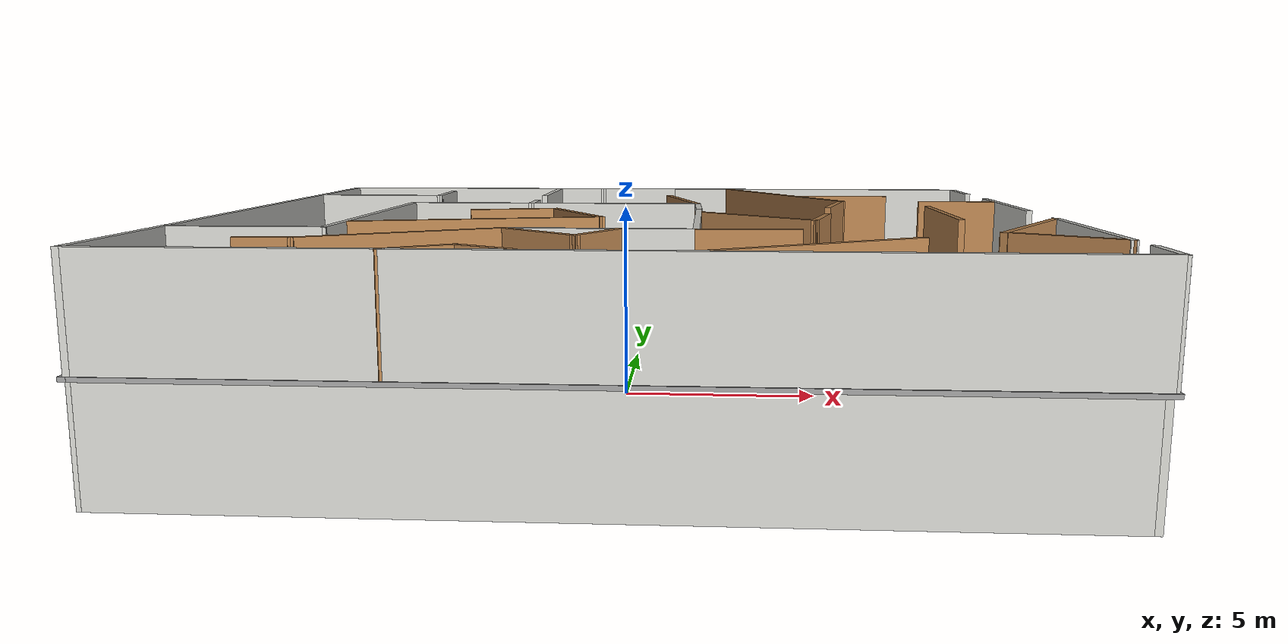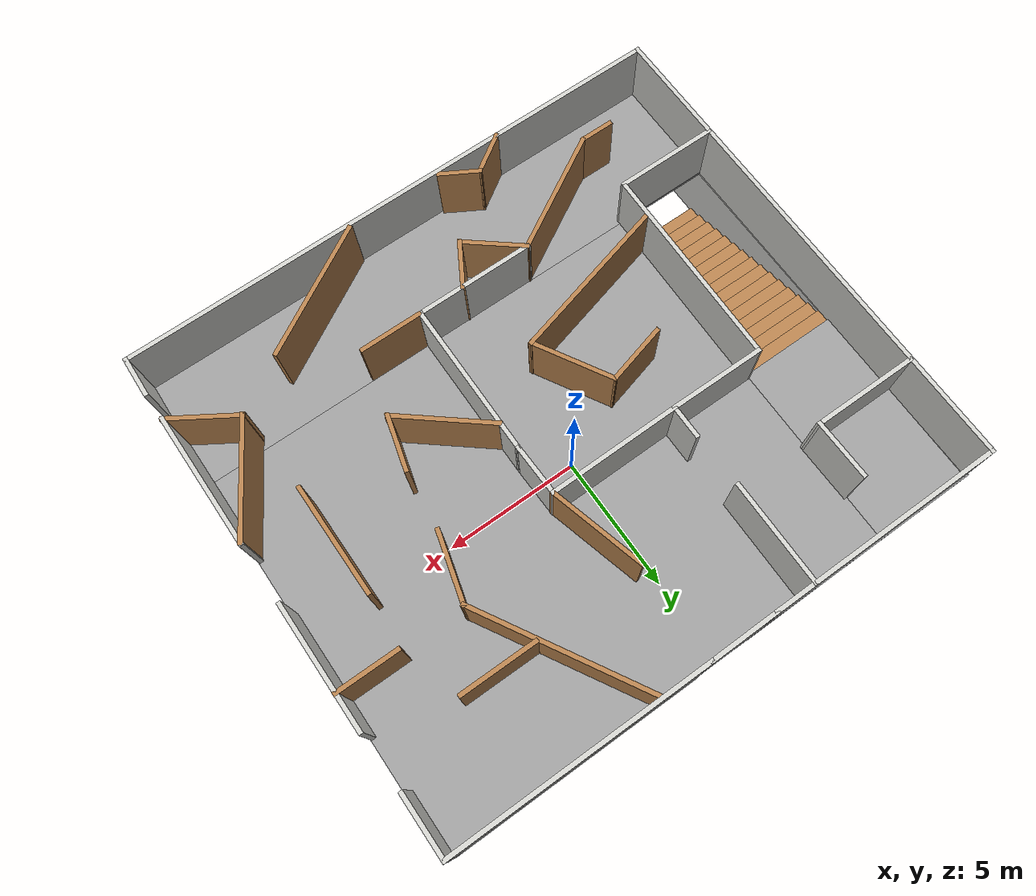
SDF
<?xml version='1.0'?>
<sdf version='1.6'>
  <model name='home'>
    <pose frame=''>0.222771 -0.763593 0 0 -0 0</pose>
    <link name='Floor_1'>
      <pose frame=''>0.051292 -0.010548 2.5 0 -0 0</pose>
      <visual name='Floor_1_Visual_0'>
        <pose frame=''>-9.96633 0 0.05 0 -0 0</pose>
        <geometry>
          <box>
            <size>0.163285 17.9576 0.1</size>
          </box>
        </geometry>
        <material>
          <script>
            <uri>file://media/materials/scripts/gazebo.material</uri>
            <name>Gazebo/Grey</name>
          </script>
          <ambient>1 1 1 1</ambient>
        </material>
        <meta>
          <layer>1</layer>
        </meta>
      </visual>
      <collision name='Floor_1_Collision_0'>
        <geometry>
          <box>
            <size>0.163285 17.9576 0.1</size>
          </box>
        </geometry>
        <pose frame=''>-9.96633 0 0.05 0 -0 0</pose>
      </collision>
      <visual name='Floor_1_Visual_1'>
        <pose frame=''>0.081642 -6.90167 0.05 0 -0 0</pose>
        <geometry>
          <box>
            <size>19.9327 4.15425 0.1</size>
          </box>
        </geometry>
        <material>
          <script>
            <uri>file://media/materials/scripts/gazebo.material</uri>
            <name>Gazebo/Grey</name>
          </script>
          <ambient>1 1 1 1</ambient>
        </material>
        <meta>
          <layer>1</layer>
        </meta>
      </visual>
      <collision name='Floor_1_Collision_1'>
        <geometry>
          <box>
            <size>19.9327 4.15425 0.1</size>
          </box>
        </geometry>
        <pose frame=''>0.081642 -6.90167 0.05 0 -0 0</pose>
      </collision>
      <visual name='Floor_1_Visual_2'>
        <pose frame=''>1.84664 2.07713 0.05 0 -0 0</pose>
        <geometry>
          <box>
            <size>16.4027 13.8033 0.1</size>
          </box>
        </geometry>
        <material>
          <script>
            <uri>file://media/materials/scripts/gazebo.material</uri>
            <name>Gazebo/Grey</name>
          </script>
          <ambient>1 1 1 1</ambient>
        </material>
        <meta>
          <layer>1</layer>
        </meta>
      </visual>
      <collision name='Floor_1_Collision_2'>
        <geometry>
          <box>
            <size>16.4027 13.8033 0.1</size>
          </box>
        </geometry>
        <pose frame=''>1.84664 2.07713 0.05 0 -0 0</pose>
      </collision>
      <visual name='Floor_1_Visual_3'>
        <pose frame=''>-8.11969 5.56778 0.05 0 -0 0</pose>
        <geometry>
          <box>
            <size>3.53 6.82204 0.1</size>
          </box>
        </geometry>
        <material>
          <script>
            <uri>file://media/materials/scripts/gazebo.material</uri>
            <name>Gazebo/Grey</name>
          </script>
          <ambient>1 1 1 1</ambient>
        </material>
        <meta>
          <layer>1</layer>
        </meta>
      </visual>
      <collision name='Floor_1_Collision_3'>
        <geometry>
          <box>
            <size>3.53 6.82204 0.1</size>
          </box>
        </geometry>
        <pose frame=''>-8.11969 5.56778 0.05 0 -0 0</pose>
      </collision>
    </link>
    <link name='Stairs_0'>
      <visual name='Stairs_0_Visual_0'>
        <pose frame=''>-8.0684 -4.60238 0.083333 0 -0 -3.14159</pose>
        <geometry>
          <box>
            <size>3.53 0.46542 0.166667</size>
          </box>
        </geometry>
        <material>
          <script>
            <uri>file://media/materials/scripts/gazebo.material</uri>
            <name>Gazebo/Wood</name>
          </script>
          <ambient>1 1 1 1</ambient>
        </material>
        <meta>
          <layer>0</layer>
        </meta>
      </visual>
      <collision name='Stairs_0_Collision_0'>
        <geometry>
          <box>
            <size>3.53 0.46542 0.166667</size>
          </box>
        </geometry>
        <pose frame=''>-8.0684 -4.60238 0.083333 0 -0 -3.14159</pose>
      </collision>
      <visual name='Stairs_0_Visual_1'>
        <pose frame=''>-8.0684 -4.13696 0.25 0 -0 -3.14159</pose>
        <geometry>
          <box>
            <size>3.53 0.46542 0.166667</size>
          </box>
        </geometry>
        <material>
          <script>
            <uri>file://media/materials/scripts/gazebo.material</uri>
            <name>Gazebo/Wood</name>
          </script>
          <ambient>1 1 1 1</ambient>
        </material>
        <meta>
          <layer>0</layer>
        </meta>
      </visual>
      <collision name='Stairs_0_Collision_1'>
        <geometry>
          <box>
            <size>3.53 0.46542 0.166667</size>
          </box>
        </geometry>
        <pose frame=''>-8.0684 -4.13696 0.25 0 -0 -3.14159</pose>
      </collision>
      <visual name='Stairs_0_Visual_2'>
        <pose frame=''>-8.0684 -3.67154 0.416667 0 -0 -3.14159</pose>
        <geometry>
          <box>
            <size>3.53 0.46542 0.166667</size>
          </box>
        </geometry>
        <material>
          <script>
            <uri>file://media/materials/scripts/gazebo.material</uri>
            <name>Gazebo/Wood</name>
          </script>
          <ambient>1 1 1 1</ambient>
        </material>
        <meta>
          <layer>0</layer>
        </meta>
      </visual>
      <collision name='Stairs_0_Collision_2'>
        <geometry>
          <box>
            <size>3.53 0.46542 0.166667</size>
          </box>
        </geometry>
        <pose frame=''>-8.0684 -3.67154 0.416667 0 -0 -3.14159</pose>
      </collision>
      <visual name='Stairs_0_Visual_3'>
        <pose frame=''>-8.0684 -3.20612 0.583333 0 -0 -3.14159</pose>
        <geometry>
          <box>
            <size>3.53 0.46542 0.166667</size>
          </box>
        </geometry>
        <material>
          <script>
            <uri>file://media/materials/scripts/gazebo.material</uri>
            <name>Gazebo/Wood</name>
          </script>
          <ambient>1 1 1 1</ambient>
        </material>
        <meta>
          <layer>0</layer>
        </meta>
      </visual>
      <collision name='Stairs_0_Collision_3'>
        <geometry>
          <box>
            <size>3.53 0.46542 0.166667</size>
          </box>
        </geometry>
        <pose frame=''>-8.0684 -3.20612 0.583333 0 -0 -3.14159</pose>
      </collision>
      <visual name='Stairs_0_Visual_4'>
        <pose frame=''>-8.0684 -2.7407 0.75 0 -0 -3.14159</pose>
        <geometry>
          <box>
            <size>3.53 0.46542 0.166667</size>
          </box>
        </geometry>
        <material>
          <script>
            <uri>file://media/materials/scripts/gazebo.material</uri>
            <name>Gazebo/Wood</name>
          </script>
          <ambient>1 1 1 1</ambient>
        </material>
        <meta>
          <layer>0</layer>
        </meta>
      </visual>
      <collision name='Stairs_0_Collision_4'>
        <geometry>
          <box>
            <size>3.53 0.46542 0.166667</size>
          </box>
        </geometry>
        <pose frame=''>-8.0684 -2.7407 0.75 0 -0 -3.14159</pose>
      </collision>
      <visual name='Stairs_0_Visual_5'>
        <pose frame=''>-8.0684 -2.27528 0.916667 0 -0 -3.14159</pose>
        <geometry>
          <box>
            <size>3.53 0.46542 0.166667</size>
          </box>
        </geometry>
        <material>
          <script>
            <uri>file://media/materials/scripts/gazebo.material</uri>
            <name>Gazebo/Wood</name>
          </script>
          <ambient>1 1 1 1</ambient>
        </material>
        <meta>
          <layer>0</layer>
        </meta>
      </visual>
      <collision name='Stairs_0_Collision_5'>
        <geometry>
          <box>
            <size>3.53 0.46542 0.166667</size>
          </box>
        </geometry>
        <pose frame=''>-8.0684 -2.27528 0.916667 0 -0 -3.14159</pose>
      </collision>
      <visual name='Stairs_0_Visual_6'>
        <pose frame=''>-8.0684 -1.80986 1.08333 0 -0 -3.14159</pose>
        <geometry>
          <box>
            <size>3.53 0.46542 0.166667</size>
          </box>
        </geometry>
        <material>
          <script>
            <uri>file://media/materials/scripts/gazebo.material</uri>
            <name>Gazebo/Wood</name>
          </script>
          <ambient>1 1 1 1</ambient>
        </material>
        <meta>
          <layer>0</layer>
        </meta>
      </visual>
      <collision name='Stairs_0_Collision_6'>
        <geometry>
          <box>
            <size>3.53 0.46542 0.166667</size>
          </box>
        </geometry>
        <pose frame=''>-8.0684 -1.80986 1.08333 0 -0 -3.14159</pose>
      </collision>
      <visual name='Stairs_0_Visual_7'>
        <pose frame=''>-8.0684 -1.34444 1.25 0 -0 -3.14159</pose>
        <geometry>
          <box>
            <size>3.53 0.46542 0.166667</size>
          </box>
        </geometry>
        <material>
          <script>
            <uri>file://media/materials/scripts/gazebo.material</uri>
            <name>Gazebo/Wood</name>
          </script>
          <ambient>1 1 1 1</ambient>
        </material>
        <meta>
          <layer>0</layer>
        </meta>
      </visual>
      <collision name='Stairs_0_Collision_7'>
        <geometry>
          <box>
            <size>3.53 0.46542 0.166667</size>
          </box>
        </geometry>
        <pose frame=''>-8.0684 -1.34444 1.25 0 -0 -3.14159</pose>
      </collision>
      <visual name='Stairs_0_Visual_8'>
        <pose frame=''>-8.0684 -0.879023 1.41667 0 -0 -3.14159</pose>
        <geometry>
          <box>
            <size>3.53 0.46542 0.166667</size>
          </box>
        </geometry>
        <material>
          <script>
            <uri>file://media/materials/scripts/gazebo.material</uri>
            <name>Gazebo/Wood</name>
          </script>
          <ambient>1 1 1 1</ambient>
        </material>
        <meta>
          <layer>0</layer>
        </meta>
      </visual>
      <collision name='Stairs_0_Collision_8'>
        <geometry>
          <box>
            <size>3.53 0.46542 0.166667</size>
          </box>
        </geometry>
        <pose frame=''>-8.0684 -0.879023 1.41667 0 -0 -3.14159</pose>
      </collision>
      <visual name='Stairs_0_Visual_9'>
        <pose frame=''>-8.0684 -0.413603 1.58333 0 -0 -3.14159</pose>
        <geometry>
          <box>
            <size>3.53 0.46542 0.166667</size>
          </box>
        </geometry>
        <material>
          <script>
            <uri>file://media/materials/scripts/gazebo.material</uri>
            <name>Gazebo/Wood</name>
          </script>
          <ambient>1 1 1 1</ambient>
        </material>
        <meta>
          <layer>0</layer>
        </meta>
      </visual>
      <collision name='Stairs_0_Collision_9'>
        <geometry>
          <box>
            <size>3.53 0.46542 0.166667</size>
          </box>
        </geometry>
        <pose frame=''>-8.0684 -0.413603 1.58333 0 -0 -3.14159</pose>
      </collision>
      <visual name='Stairs_0_Visual_10'>
        <pose frame=''>-8.0684 0.051817 1.75 0 -0 -3.14159</pose>
        <geometry>
          <box>
            <size>3.53 0.46542 0.166667</size>
          </box>
        </geometry>
        <material>
          <script>
            <uri>file://media/materials/scripts/gazebo.material</uri>
            <name>Gazebo/Wood</name>
          </script>
          <ambient>1 1 1 1</ambient>
        </material>
        <meta>
          <layer>0</layer>
        </meta>
      </visual>
      <collision name='Stairs_0_Collision_10'>
        <geometry>
          <box>
            <size>3.53 0.46542 0.166667</size>
          </box>
        </geometry>
        <pose frame=''>-8.0684 0.051817 1.75 0 -0 -3.14159</pose>
      </collision>
      <visual name='Stairs_0_Visual_11'>
        <pose frame=''>-8.0684 0.517237 1.91667 0 -0 -3.14159</pose>
        <geometry>
          <box>
            <size>3.53 0.46542 0.166667</size>
          </box>
        </geometry>
        <material>
          <script>
            <uri>file://media/materials/scripts/gazebo.material</uri>
            <name>Gazebo/Wood</name>
          </script>
          <ambient>1 1 1 1</ambient>
        </material>
        <meta>
          <layer>0</layer>
        </meta>
      </visual>
      <collision name='Stairs_0_Collision_11'>
        <geometry>
          <box>
            <size>3.53 0.46542 0.166667</size>
          </box>
        </geometry>
        <pose frame=''>-8.0684 0.517237 1.91667 0 -0 -3.14159</pose>
      </collision>
      <visual name='Stairs_0_Visual_12'>
        <pose frame=''>-8.0684 0.982657 2.08333 0 -0 -3.14159</pose>
        <geometry>
          <box>
            <size>3.53 0.46542 0.166667</size>
          </box>
        </geometry>
        <material>
          <script>
            <uri>file://media/materials/scripts/gazebo.material</uri>
            <name>Gazebo/Wood</name>
          </script>
          <ambient>1 1 1 1</ambient>
        </material>
        <meta>
          <layer>0</layer>
        </meta>
      </visual>
      <collision name='Stairs_0_Collision_12'>
        <geometry>
          <box>
            <size>3.53 0.46542 0.166667</size>
          </box>
        </geometry>
        <pose frame=''>-8.0684 0.982657 2.08333 0 -0 -3.14159</pose>
      </collision>
      <visual name='Stairs_0_Visual_13'>
        <pose frame=''>-8.0684 1.44808 2.25 0 -0 -3.14159</pose>
        <geometry>
          <box>
            <size>3.53 0.46542 0.166667</size>
          </box>
        </geometry>
        <material>
          <script>
            <uri>file://media/materials/scripts/gazebo.material</uri>
            <name>Gazebo/Wood</name>
          </script>
          <ambient>1 1 1 1</ambient>
        </material>
        <meta>
          <layer>0</layer>
        </meta>
      </visual>
      <collision name='Stairs_0_Collision_13'>
        <geometry>
          <box>
            <size>3.53 0.46542 0.166667</size>
          </box>
        </geometry>
        <pose frame=''>-8.0684 1.44808 2.25 0 -0 -3.14159</pose>
      </collision>
      <visual name='Stairs_0_Visual_14'>
        <pose frame=''>-8.0684 1.9135 2.41667 0 -0 -3.14159</pose>
        <geometry>
          <box>
            <size>3.53 0.46542 0.166667</size>
          </box>
        </geometry>
        <material>
          <script>
            <uri>file://media/materials/scripts/gazebo.material</uri>
            <name>Gazebo/Wood</name>
          </script>
          <ambient>1 1 1 1</ambient>
        </material>
        <meta>
          <layer>0</layer>
        </meta>
      </visual>
      <collision name='Stairs_0_Collision_14'>
        <geometry>
          <box>
            <size>3.53 0.46542 0.166667</size>
          </box>
        </geometry>
        <pose frame=''>-8.0684 1.9135 2.41667 0 -0 -3.14159</pose>
      </collision>
    </link>
    <link name='Wall_101'>
      <collision name='Wall_101_Collision'>
        <geometry>
          <box>
            <size>3.5 0.15 2.5</size>
          </box>
        </geometry>
        <pose frame=''>0 0 1.25 0 -0 0</pose>
      </collision>
      <visual name='Wall_101_Visual'>
        <pose frame=''>0 0 1.25 0 -0 0</pose>
        <geometry>
          <box>
            <size>3.5 0.15 2.5</size>
          </box>
        </geometry>
        <material>
          <script>
            <uri>file://media/materials/scripts/gazebo.material</uri>
            <name>Gazebo/Wood</name>
          </script>
          <ambient>1 1 1 1</ambient>
        </material>
        <meta>
          <layer>1</layer>
        </meta>
      </visual>
      <pose frame=''>1.19673 3.87559 2.5 0 -0 -1.30902</pose>
    </link>
    <link name='Wall_105'>
      <collision name='Wall_105_Collision'>
        <geometry>
          <box>
            <size>2.25 0.15 2.5</size>
          </box>
        </geometry>
        <pose frame=''>0 0 1.25 0 -0 0</pose>
      </collision>
      <visual name='Wall_105_Visual'>
        <pose frame=''>0 0 1.25 0 -0 0</pose>
        <geometry>
          <box>
            <size>2.25 0.15 2.5</size>
          </box>
        </geometry>
        <material>
          <script>
            <uri>file://media/materials/scripts/gazebo.material</uri>
            <name>Gazebo/CeilingTiled</name>
          </script>
          <ambient>1 1 1 1</ambient>
        </material>
        <meta>
          <layer>1</layer>
        </meta>
      </visual>
      <pose frame=''>9.92223 7.84259 2.5 0 -0 -1.5708</pose>
    </link>
    <link name='Wall_107'>
      <collision name='Wall_107_Collision'>
        <geometry>
          <box>
            <size>1.50013 0.15 2.5</size>
          </box>
        </geometry>
        <pose frame=''>0 0 1.25 0 -0 0</pose>
      </collision>
      <visual name='Wall_107_Visual'>
        <pose frame=''>0 0 1.25 0 -0 0</pose>
        <geometry>
          <box>
            <size>1.50013 0.15 2.5</size>
          </box>
        </geometry>
        <material>
          <script>
            <uri>file://media/materials/scripts/gazebo.material</uri>
            <name>Gazebo/CeilingTiled</name>
          </script>
          <ambient>1 1 1 1</ambient>
        </material>
        <meta>
          <layer>1</layer>
        </meta>
      </visual>
      <pose frame=''>9.99673 -8.19041 2.5 0 -0 1.54043</pose>
    </link>
    <link name='Wall_109'>
      <collision name='Wall_109_Collision'>
        <geometry>
          <box>
            <size>4.89107 0.15 2.5</size>
          </box>
        </geometry>
        <pose frame=''>0 0 1.25 0 -0 0</pose>
      </collision>
      <visual name='Wall_109_Visual'>
        <pose frame=''>0 0 1.25 0 -0 0</pose>
        <geometry>
          <box>
            <size>4.89107 0.15 2.5</size>
          </box>
        </geometry>
        <material>
          <script>
            <uri>file://media/materials/scripts/gazebo.material</uri>
            <name>Gazebo/CeilingTiled</name>
          </script>
          <ambient>1 1 1 1</ambient>
        </material>
        <meta>
          <layer>1</layer>
        </meta>
      </visual>
      <pose frame=''>9.9961 -4.14387 2.5 0 -0 1.57085</pose>
    </link>
    <link name='Wall_111'>
      <collision name='Wall_111_Collision'>
        <geometry>
          <box>
            <size>4.5 0.15 2.5</size>
          </box>
        </geometry>
        <pose frame=''>0 0 1.25 0 -0 0</pose>
      </collision>
      <visual name='Wall_111_Visual'>
        <pose frame=''>0 0 1.25 0 -0 0</pose>
        <geometry>
          <box>
            <size>4.5 0.15 2.5</size>
          </box>
        </geometry>
        <material>
          <script>
            <uri>file://media/materials/scripts/gazebo.material</uri>
            <name>Gazebo/CeilingTiled</name>
          </script>
          <ambient>1 1 1 1</ambient>
        </material>
        <meta>
          <layer>1</layer>
        </meta>
      </visual>
      <pose frame=''>9.98623 2.58859 2.5 0 -0 1.5708</pose>
    </link>
    <link name='Wall_113'>
      <collision name='Wall_113_Collision'>
        <geometry>
          <box>
            <size>6.25 0.15 2.5</size>
          </box>
        </geometry>
        <pose frame=''>0 0 1.25 0 -0 0</pose>
      </collision>
      <visual name='Wall_113_Visual'>
        <pose frame=''>0 0 1.25 0 -0 0</pose>
        <geometry>
          <box>
            <size>6.25 0.15 2.5</size>
          </box>
        </geometry>
        <material>
          <script>
            <uri>file://media/materials/scripts/gazebo.material</uri>
            <name>Gazebo/Wood</name>
          </script>
          <ambient>1 1 1 1</ambient>
        </material>
        <meta>
          <layer>1</layer>
        </meta>
      </visual>
      <pose frame=''>4.14423 6.13197 2.5 0 -0 -1.0472</pose>
    </link>
    <link name='Wall_114'>
      <collision name='Wall_114_Collision'>
        <geometry>
          <box>
            <size>2.5 0.15 2.5</size>
          </box>
        </geometry>
        <pose frame=''>0 0 1.25 0 -0 0</pose>
      </collision>
      <visual name='Wall_114_Visual'>
        <pose frame=''>0 0 1.25 0 -0 0</pose>
        <geometry>
          <box>
            <size>2.5 0.15 2.5</size>
          </box>
        </geometry>
        <material>
          <script>
            <uri>file://media/materials/scripts/gazebo.material</uri>
            <name>Gazebo/Wood</name>
          </script>
          <ambient>1 1 1 1</ambient>
        </material>
        <meta>
          <layer>1</layer>
        </meta>
      </visual>
      <pose frame=''>5.36523 2.35559 2.5 0 -0 -1.83249</pose>
    </link>
    <link name='Wall_116'>
      <collision name='Wall_116_Collision'>
        <geometry>
          <box>
            <size>3.58798 0.15 2.5</size>
          </box>
        </geometry>
        <pose frame=''>0 0 1.25 0 -0 0</pose>
      </collision>
      <visual name='Wall_116_Visual'>
        <pose frame=''>0 0 1.25 0 -0 0</pose>
        <geometry>
          <box>
            <size>3.58798 0.15 2.5</size>
          </box>
        </geometry>
        <material>
          <script>
            <uri>file://media/materials/scripts/gazebo.material</uri>
            <name>Gazebo/Wood</name>
          </script>
          <ambient>1 1 1 1</ambient>
        </material>
        <meta>
          <layer>1</layer>
        </meta>
      </visual>
      <pose frame=''>3.01923 -1.54991 2.5 0 -0 -0.690047</pose>
    </link>
    <link name='Wall_117'>
      <collision name='Wall_117_Collision'>
        <geometry>
          <box>
            <size>2 0.15 2.5</size>
          </box>
        </geometry>
        <pose frame=''>0 0 1.25 0 -0 0</pose>
      </collision>
      <visual name='Wall_117_Visual'>
        <pose frame=''>0 0 1.25 0 -0 0</pose>
        <geometry>
          <box>
            <size>2 0.15 2.5</size>
          </box>
        </geometry>
        <material>
          <script>
            <uri>file://media/materials/scripts/gazebo.material</uri>
            <name>Gazebo/Wood</name>
          </script>
          <ambient>1 1 1 1</ambient>
        </material>
        <meta>
          <layer>1</layer>
        </meta>
      </visual>
      <pose frame=''>4.58464 -1.75093 2.5 0 -0 1.309</pose>
    </link>
    <link name='Wall_119'>
      <collision name='Wall_119_Collision'>
        <geometry>
          <box>
            <size>2.25 0.15 2.5</size>
          </box>
        </geometry>
        <pose frame=''>0 0 1.25 0 -0 0</pose>
      </collision>
      <visual name='Wall_119_Visual'>
        <pose frame=''>0 0 1.25 0 -0 0</pose>
        <geometry>
          <box>
            <size>2.25 0.15 2.5</size>
          </box>
        </geometry>
        <material>
          <script>
            <uri>file://media/materials/scripts/gazebo.material</uri>
            <name>Gazebo/Wood</name>
          </script>
          <ambient>1 1 1 1</ambient>
        </material>
        <meta>
          <layer>1</layer>
        </meta>
      </visual>
      <pose frame=''>8.94223 3.47659 2.5 0 -0 0</pose>
    </link>
    <link name='Wall_121'>
      <collision name='Wall_121_Collision'>
        <geometry>
          <box>
            <size>5 0.15 2.5</size>
          </box>
        </geometry>
        <pose frame=''>0 0 1.25 0 -0 0</pose>
      </collision>
      <visual name='Wall_121_Visual'>
        <pose frame=''>0 0 1.25 0 -0 0</pose>
        <geometry>
          <box>
            <size>5 0.15 2.5</size>
          </box>
        </geometry>
        <material>
          <script>
            <uri>file://media/materials/scripts/gazebo.material</uri>
            <name>Gazebo/Wood</name>
          </script>
          <ambient>1 1 1 1</ambient>
        </material>
        <meta>
          <layer>1</layer>
        </meta>
      </visual>
      <pose frame=''>3.97923 -7.56991 2.5 0 -0 0.523622</pose>
    </link>
    <link name='Wall_124'>
      <collision name='Wall_124_Collision'>
        <geometry>
          <box>
            <size>2.75 0.15 2.5</size>
          </box>
        </geometry>
        <pose frame=''>0 0 1.25 0 -0 0</pose>
      </collision>
      <visual name='Wall_124_Visual'>
        <pose frame=''>0 0 1.25 0 -0 0</pose>
        <geometry>
          <box>
            <size>2.75 0.15 2.5</size>
          </box>
        </geometry>
        <material>
          <script>
            <uri>file://media/materials/scripts/gazebo.material</uri>
            <name>Gazebo/Wood</name>
          </script>
          <ambient>1 1 1 1</ambient>
        </material>
        <meta>
          <layer>1</layer>
        </meta>
      </visual>
      <pose frame=''>5.85856 5.54987 2.5 0 -0 0</pose>
    </link>
    <link name='Wall_129'>
      <collision name='Wall_129_Collision'>
        <geometry>
          <box>
            <size>3.66889 0.15 2.5</size>
          </box>
        </geometry>
        <pose frame=''>0 0 1.25 0 -0 0</pose>
      </collision>
      <visual name='Wall_129_Visual'>
        <pose frame=''>0 0 1.25 0 -0 0</pose>
        <geometry>
          <box>
            <size>3.66889 0.15 2.5</size>
          </box>
        </geometry>
        <material>
          <script>
            <uri>file://media/materials/scripts/gazebo.material</uri>
            <name>Gazebo/CeilingTiled</name>
          </script>
          <ambient>1 1 1 1</ambient>
        </material>
        <meta>
          <layer>1</layer>
        </meta>
      </visual>
      <pose frame=''>-8.07133 -4.92941 2.5 0 -0 3.14159</pose>
    </link>
    <link name='Wall_131'>
      <collision name='Wall_131_Collision'>
        <geometry>
          <box>
            <size>4 0.15 2.5</size>
          </box>
        </geometry>
        <pose frame=''>0 0 1.25 0 -0 0</pose>
      </collision>
      <visual name='Wall_131_Visual'>
        <pose frame=''>0 0 1.25 0 -0 0</pose>
        <geometry>
          <box>
            <size>4 0.15 2.5</size>
          </box>
        </geometry>
        <material>
          <script>
            <uri>file://media/materials/scripts/gazebo.material</uri>
            <name>Gazebo/Wood</name>
          </script>
          <ambient>1 1 1 1</ambient>
        </material>
        <meta>
          <layer>1</layer>
        </meta>
      </visual>
      <pose frame=''>7.72167 -0.313246 2.5 0 -0 1.5708</pose>
    </link>
    <link name='Wall_136'>
      <collision name='Wall_136_Collision'>
        <geometry>
          <box>
            <size>6 0.15 2.5</size>
          </box>
        </geometry>
        <pose frame=''>0 0 1.25 0 -0 0</pose>
      </collision>
      <visual name='Wall_136_Visual'>
        <pose frame=''>0 0 1.25 0 -0 0</pose>
        <geometry>
          <box>
            <size>6 0.15 2.5</size>
          </box>
        </geometry>
        <material>
          <script>
            <uri>file://media/materials/scripts/gazebo.material</uri>
            <name>Gazebo/Wood</name>
          </script>
          <ambient>1 1 1 1</ambient>
        </material>
        <meta>
          <layer>1</layer>
        </meta>
      </visual>
      <pose frame=''>-3.43327 -2.83141 2.5 0 -0 0.26177</pose>
    </link>
    <link name='Wall_137'>
      <collision name='Wall_137_Collision'>
        <geometry>
          <box>
            <size>3 0.15 2.5</size>
          </box>
        </geometry>
        <pose frame=''>0 0 1.25 0 -0 0</pose>
      </collision>
      <visual name='Wall_137_Visual'>
        <pose frame=''>0 0 1.25 0 -0 0</pose>
        <geometry>
          <box>
            <size>3 0.15 2.5</size>
          </box>
        </geometry>
        <material>
          <script>
            <uri>file://media/materials/scripts/gazebo.material</uri>
            <name>Gazebo/Wood</name>
          </script>
          <ambient>1 1 1 1</ambient>
        </material>
        <meta>
          <layer>1</layer>
        </meta>
      </visual>
      <pose frame=''>-1.32027 -0.840407 2.5 0 -0 2.09443</pose>
    </link>
    <link name='Wall_138'>
      <collision name='Wall_138_Collision'>
        <geometry>
          <box>
            <size>2.25 0.15 2.5</size>
          </box>
        </geometry>
        <pose frame=''>0 0 1.25 0 -0 0</pose>
      </collision>
      <visual name='Wall_138_Visual'>
        <pose frame=''>0 0 1.25 0 -0 0</pose>
        <geometry>
          <box>
            <size>2.25 0.15 2.5</size>
          </box>
        </geometry>
        <material>
          <script>
            <uri>file://media/materials/scripts/gazebo.material</uri>
            <name>Gazebo/Wood</name>
          </script>
          <ambient>1 1 1 1</ambient>
        </material>
        <meta>
          <layer>1</layer>
        </meta>
      </visual>
      <pose frame=''>-3.04677 0.122093 2.5 0 -0 -2.87998</pose>
    </link>
    <link name='Wall_140'>
      <collision name='Wall_140_Collision'>
        <geometry>
          <box>
            <size>2.25 0.15 2.5</size>
          </box>
        </geometry>
        <pose frame=''>0 0 1.25 0 -0 0</pose>
      </collision>
      <visual name='Wall_140_Visual'>
        <pose frame=''>0 0 1.25 0 -0 0</pose>
        <geometry>
          <box>
            <size>2.25 0.15 2.5</size>
          </box>
        </geometry>
        <material>
          <script>
            <uri>file://media/materials/scripts/gazebo.material</uri>
            <name>Gazebo/Wood</name>
          </script>
          <ambient>1 1 1 1</ambient>
        </material>
        <meta>
          <layer>1</layer>
        </meta>
      </visual>
      <pose frame=''>2.76302 -4.91326 2.5 0 -0 3.14159</pose>
    </link>
    <link name='Wall_144'>
      <collision name='Wall_144_Collision'>
        <geometry>
          <box>
            <size>4.15194 0.15 2.5</size>
          </box>
        </geometry>
        <pose frame=''>0 0 1.25 0 -0 0</pose>
      </collision>
      <visual name='Wall_144_Visual'>
        <pose frame=''>0 0 1.25 0 -0 0</pose>
        <geometry>
          <box>
            <size>4.15194 0.15 2.5</size>
          </box>
        </geometry>
        <material>
          <script>
            <uri>file://media/materials/scripts/gazebo.material</uri>
            <name>Gazebo/Wood</name>
          </script>
          <ambient>1 1 1 1</ambient>
        </material>
        <meta>
          <layer>1</layer>
        </meta>
      </visual>
      <pose frame=''>8.96096 -3.52111 2.5 0 -0 -2.11443</pose>
    </link>
    <link name='Wall_145'>
      <collision name='Wall_145_Collision'>
        <geometry>
          <box>
            <size>2.60317 0.15 2.5</size>
          </box>
        </geometry>
        <pose frame=''>0 0 1.25 0 -0 0</pose>
      </collision>
      <visual name='Wall_145_Visual'>
        <pose frame=''>0 0 1.25 0 -0 0</pose>
        <geometry>
          <box>
            <size>2.60317 0.15 2.5</size>
          </box>
        </geometry>
        <material>
          <script>
            <uri>file://media/materials/scripts/gazebo.material</uri>
            <name>Gazebo/Wood</name>
          </script>
          <ambient>1 1 1 1</ambient>
        </material>
        <meta>
          <layer>1</layer>
        </meta>
      </visual>
      <pose frame=''>8.9611 -5.85637 2.5 0 -0 -0.566256</pose>
    </link>
    <link name='Wall_147'>
      <collision name='Wall_147_Collision'>
        <geometry>
          <box>
            <size>1.75 0.15 2.5</size>
          </box>
        </geometry>
        <pose frame=''>0 0 1.25 0 -0 0</pose>
      </collision>
      <visual name='Wall_147_Visual'>
        <pose frame=''>0 0 1.25 0 -0 0</pose>
        <geometry>
          <box>
            <size>1.75 0.15 2.5</size>
          </box>
        </geometry>
        <material>
          <script>
            <uri>file://media/materials/scripts/gazebo.material</uri>
            <name>Gazebo/Wood</name>
          </script>
          <ambient>1 1 1 1</ambient>
        </material>
        <meta>
          <layer>1</layer>
        </meta>
      </visual>
      <pose frame=''>-0.338771 -5.60391 2.5 0 -0 -2.09459</pose>
    </link>
    <link name='Wall_148'>
      <collision name='Wall_148_Collision'>
        <geometry>
          <box>
            <size>2.34326 0.15 2.5</size>
          </box>
        </geometry>
        <pose frame=''>0 0 1.25 0 -0 0</pose>
      </collision>
      <visual name='Wall_148_Visual'>
        <pose frame=''>0 0 1.25 0 -0 0</pose>
        <geometry>
          <box>
            <size>2.34326 0.15 2.5</size>
          </box>
        </geometry>
        <material>
          <script>
            <uri>file://media/materials/scripts/gazebo.material</uri>
            <name>Gazebo/Wood</name>
          </script>
          <ambient>1 1 1 1</ambient>
        </material>
        <meta>
          <layer>1</layer>
        </meta>
      </visual>
      <pose frame=''>-1.58827 -5.60291 2.5 0 -0 2.45695</pose>
    </link>
    <link name='Wall_150'>
      <collision name='Wall_150_Collision'>
        <geometry>
          <box>
            <size>1.60682 0.15 2.5</size>
          </box>
        </geometry>
        <pose frame=''>0 0 1.25 0 -0 0</pose>
      </collision>
      <visual name='Wall_150_Visual'>
        <pose frame=''>0 0 1.25 0 -0 0</pose>
        <geometry>
          <box>
            <size>1.60682 0.15 2.5</size>
          </box>
        </geometry>
        <material>
          <script>
            <uri>file://media/materials/scripts/gazebo.material</uri>
            <name>Gazebo/Wood</name>
          </script>
          <ambient>1 1 1 1</ambient>
        </material>
        <meta>
          <layer>1</layer>
        </meta>
      </visual>
      <pose frame=''>-3.34634 -8.48341 2.5 0 -0 0.584627</pose>
    </link>
    <link name='Wall_151'>
      <collision name='Wall_151_Collision'>
        <geometry>
          <box>
            <size>1.5 0.15 2.5</size>
          </box>
        </geometry>
        <pose frame=''>0 0 1.25 0 -0 0</pose>
      </collision>
      <visual name='Wall_151_Visual'>
        <pose frame=''>0 0 1.25 0 -0 0</pose>
        <geometry>
          <box>
            <size>1.5 0.15 2.5</size>
          </box>
        </geometry>
        <material>
          <script>
            <uri>file://media/materials/scripts/gazebo.material</uri>
            <name>Gazebo/Wood</name>
          </script>
          <ambient>1 1 1 1</ambient>
        </material>
        <meta>
          <layer>1</layer>
        </meta>
      </visual>
      <pose frame=''>-2.15434 -8.41891 2.5 0 -0 -0.523599</pose>
    </link>
    <link name='Wall_153'>
      <collision name='Wall_153_Collision'>
        <geometry>
          <box>
            <size>4.5 0.15 2.5</size>
          </box>
        </geometry>
        <pose frame=''>0 0 1.25 0 -0 0</pose>
      </collision>
      <visual name='Wall_153_Visual'>
        <pose frame=''>0 0 1.25 0 -0 0</pose>
        <geometry>
          <box>
            <size>4.5 0.15 2.5</size>
          </box>
        </geometry>
        <material>
          <script>
            <uri>file://media/materials/scripts/gazebo.material</uri>
            <name>Gazebo/Wood</name>
          </script>
          <ambient>1 1 1 1</ambient>
        </material>
        <meta>
          <layer>1</layer>
        </meta>
      </visual>
      <pose frame=''>-4.32138 -5.99691 2.5 0 -0 -2.61799</pose>
    </link>
    <link name='Wall_155'>
      <collision name='Wall_155_Collision'>
        <geometry>
          <box>
            <size>1.25 0.15 2.5</size>
          </box>
        </geometry>
        <pose frame=''>0 0 1.25 0 -0 0</pose>
      </collision>
      <visual name='Wall_155_Visual'>
        <pose frame=''>0 0 1.25 0 -0 0</pose>
        <geometry>
          <box>
            <size>1.25 0.15 2.5</size>
          </box>
        </geometry>
        <material>
          <script>
            <uri>file://media/materials/scripts/gazebo.material</uri>
            <name>Gazebo/Wood</name>
          </script>
          <ambient>1 1 1 1</ambient>
        </material>
        <meta>
          <layer>1</layer>
        </meta>
      </visual>
      <pose frame=''>-6.75498 -7.08441 2.5 0 -0 0</pose>
    </link>
    <link name='Wall_157'>
      <collision name='Wall_157_Collision'>
        <geometry>
          <box>
            <size>3.785 0.15 2.5</size>
          </box>
        </geometry>
        <pose frame=''>0 0 1.25 0 -0 0</pose>
      </collision>
      <visual name='Wall_157_Visual'>
        <pose frame=''>0 0 1.25 0 -0 0</pose>
        <geometry>
          <box>
            <size>3.785 0.15 2.5</size>
          </box>
        </geometry>
        <material>
          <script>
            <uri>file://media/materials/scripts/gazebo.material</uri>
            <name>Gazebo/CeilingTiled</name>
          </script>
          <ambient>1 1 1 1</ambient>
        </material>
        <meta>
          <layer>1</layer>
        </meta>
      </visual>
      <pose frame=''>-8.04927 5.17259 2.5 0 -0 0</pose>
    </link>
    <link name='Wall_158'>
      <collision name='Wall_158_Collision'>
        <geometry>
          <box>
            <size>2.1803 0.15 2.5</size>
          </box>
        </geometry>
        <pose frame=''>0 0 1.25 0 -0 0</pose>
      </collision>
      <visual name='Wall_158_Visual'>
        <pose frame=''>0 0 1.25 0 -0 0</pose>
        <geometry>
          <box>
            <size>2.1803 0.15 2.5</size>
          </box>
        </geometry>
        <material>
          <script>
            <uri>file://media/materials/scripts/gazebo.material</uri>
            <name>Gazebo/CeilingTiled</name>
          </script>
          <ambient>1 1 1 1</ambient>
        </material>
        <meta>
          <layer>1</layer>
        </meta>
      </visual>
      <pose frame=''>-6.24927 6.18759 2.5 0 -0 1.58804</pose>
    </link>
    <link name='Wall_160'>
      <collision name='Wall_160_Collision'>
        <geometry>
          <box>
            <size>3.5 0.15 2.5</size>
          </box>
        </geometry>
        <pose frame=''>0 0 1.25 0 -0 0</pose>
      </collision>
      <visual name='Wall_160_Visual'>
        <pose frame=''>0 0 1.25 0 -0 0</pose>
        <geometry>
          <box>
            <size>3.5 0.15 2.5</size>
          </box>
        </geometry>
        <material>
          <script>
            <uri>file://media/materials/scripts/gazebo.material</uri>
            <name>Gazebo/Wood</name>
          </script>
          <ambient>1 1 1 1</ambient>
        </material>
        <meta>
          <layer>0</layer>
        </meta>
      </visual>
      <pose frame=''>-6.48077 5.50859 0 0 -0 -1.5708</pose>
    </link>
    <link name='Wall_19'>
      <collision name='Wall_19_Collision'>
        <geometry>
          <box>
            <size>8.5 0.15 2.5</size>
          </box>
        </geometry>
        <pose frame=''>0 0 1.25 0 -0 0</pose>
      </collision>
      <visual name='Wall_19_Visual'>
        <pose frame=''>0 0 1.25 0 -0 0</pose>
        <geometry>
          <box>
            <size>8.5 0.15 2.5</size>
          </box>
        </geometry>
        <material>
          <script>
            <uri>file://media/materials/scripts/gazebo.material</uri>
            <name>Gazebo/CeilingTiled</name>
          </script>
          <ambient>1 1 1 1</ambient>
        </material>
        <meta>
          <layer>0</layer>
        </meta>
      </visual>
      <pose frame=''>-5.74677 8.86009 0 0 -0 -3.13884</pose>
    </link>
    <link name='Wall_20'>
      <collision name='Wall_20_Collision'>
        <geometry>
          <box>
            <size>17.8918 0.15 2.5</size>
          </box>
        </geometry>
        <pose frame=''>0 0 1.25 0 -0 0</pose>
      </collision>
      <visual name='Wall_20_Visual'>
        <pose frame=''>0 0 1.25 0 -0 0</pose>
        <geometry>
          <box>
            <size>17.8918 0.15 2.5</size>
          </box>
        </geometry>
        <material>
          <script>
            <uri>file://media/materials/scripts/gazebo.material</uri>
            <name>Gazebo/CeilingTiled</name>
          </script>
          <ambient>1 1 1 1</ambient>
        </material>
        <meta>
          <layer>0</layer>
        </meta>
      </visual>
      <pose frame=''>-9.85327 -0.021907 0 0 -0 -1.56307</pose>
    </link>
    <link name='Wall_21'>
      <collision name='Wall_21_Collision'>
        <geometry>
          <box>
            <size>19.8294 0.15 2.5</size>
          </box>
        </geometry>
        <pose frame=''>0 0 1.25 0 -0 0</pose>
      </collision>
      <visual name='Wall_21_Visual'>
        <pose frame=''>0 0 1.25 0 -0 0</pose>
        <geometry>
          <box>
            <size>19.8294 0.15 2.5</size>
          </box>
        </geometry>
        <material>
          <script>
            <uri>file://media/materials/scripts/gazebo.material</uri>
            <name>Gazebo/CeilingTiled</name>
          </script>
          <ambient>1 1 1 1</ambient>
        </material>
        <meta>
          <layer>0</layer>
        </meta>
      </visual>
      <pose frame=''>0.054729 -8.86891 0 0 -0 0.002388</pose>
    </link>
    <link name='Wall_22'>
      <collision name='Wall_22_Collision'>
        <geometry>
          <box>
            <size>17.8889 0.15 2.5</size>
          </box>
        </geometry>
        <pose frame=''>0 0 1.25 0 -0 0</pose>
      </collision>
      <visual name='Wall_22_Visual'>
        <pose frame=''>0 0 1.25 0 -0 0</pose>
        <geometry>
          <box>
            <size>17.8889 0.15 2.5</size>
          </box>
        </geometry>
        <material>
          <script>
            <uri>file://media/materials/scripts/gazebo.material</uri>
            <name>Gazebo/CeilingTiled</name>
          </script>
          <ambient>1 1 1 1</ambient>
        </material>
        <meta>
          <layer>0</layer>
        </meta>
      </visual>
      <pose frame=''>9.90823 0.023593 0 0 -0 1.56922</pose>
    </link>
    <link name='Wall_23'>
      <collision name='Wall_23_Collision'>
        <geometry>
          <box>
            <size>9.25 0.15 2.5</size>
          </box>
        </geometry>
        <pose frame=''>0 0 1.25 0 -0 0</pose>
      </collision>
      <visual name='Wall_23_Visual'>
        <pose frame=''>0 0 1.25 0 -0 0</pose>
        <geometry>
          <box>
            <size>9.25 0.15 2.5</size>
          </box>
        </geometry>
        <material>
          <script>
            <uri>file://media/materials/scripts/gazebo.material</uri>
            <name>Gazebo/CeilingTiled</name>
          </script>
          <ambient>1 1 1 1</ambient>
        </material>
        <meta>
          <layer>0</layer>
        </meta>
      </visual>
      <pose frame=''>5.37223 8.89259 0 0 -0 3.14159</pose>
    </link>
    <link name='Wall_28'>
      <collision name='Wall_28_Collision'>
        <geometry>
          <box>
            <size>9.4247 0.15 2.5</size>
          </box>
        </geometry>
        <pose frame=''>0 0 1.25 0 -0 0</pose>
      </collision>
      <visual name='Wall_28_Visual'>
        <pose frame=''>0 0 1.25 0 -0 0</pose>
        <geometry>
          <box>
            <size>9.4247 0.15 2.5</size>
          </box>
        </geometry>
        <material>
          <script>
            <uri>file://media/materials/scripts/gazebo.material</uri>
            <name>Gazebo/CeilingTiled</name>
          </script>
          <ambient>1 1 1 1</ambient>
        </material>
        <meta>
          <layer>0</layer>
        </meta>
      </visual>
      <pose frame=''>4.62473 -2.46591 0 0 -0 1.56594</pose>
    </link>
    <link name='Wall_29'>
      <collision name='Wall_29_Collision'>
        <geometry>
          <box>
            <size>14.7036 0.15 2.5</size>
          </box>
        </geometry>
        <pose frame=''>0 0 1.25 0 -0 0</pose>
      </collision>
      <visual name='Wall_29_Visual'>
        <pose frame=''>0 0 1.25 0 -0 0</pose>
        <geometry>
          <box>
            <size>14.7036 0.15 2.5</size>
          </box>
        </geometry>
        <material>
          <script>
            <uri>file://media/materials/scripts/gazebo.material</uri>
            <name>Gazebo/CeilingTiled</name>
          </script>
          <ambient>1 1 1 1</ambient>
        </material>
        <meta>
          <layer>0</layer>
        </meta>
      </visual>
      <pose frame=''>-2.62977 2.17159 0 0 -0 3.14159</pose>
    </link>
    <link name='Wall_31'>
      <collision name='Wall_31_Collision'>
        <geometry>
          <box>
            <size>7.25 0.15 2.5</size>
          </box>
        </geometry>
        <pose frame=''>0 0 1.25 0 -0 0</pose>
      </collision>
      <visual name='Wall_31_Visual'>
        <pose frame=''>0 0 1.25 0 -0 0</pose>
        <geometry>
          <box>
            <size>7.25 0.15 2.5</size>
          </box>
        </geometry>
        <material>
          <script>
            <uri>file://media/materials/scripts/gazebo.material</uri>
            <name>Gazebo/CeilingTiled</name>
          </script>
          <ambient>1 1 1 1</ambient>
        </material>
        <meta>
          <layer>0</layer>
        </meta>
      </visual>
      <pose frame=''>-6.23077 -1.33341 0 0 -0 -1.5708</pose>
    </link>
    <link name='Wall_35'>
      <collision name='Wall_35_Collision'>
        <geometry>
          <box>
            <size>8.04365 0.15 2.5</size>
          </box>
        </geometry>
        <pose frame=''>0 0 1.25 0 -0 0</pose>
      </collision>
      <visual name='Wall_35_Visual'>
        <pose frame=''>0 0 1.25 0 -0 0</pose>
        <geometry>
          <box>
            <size>8.04365 0.15 2.5</size>
          </box>
        </geometry>
        <material>
          <script>
            <uri>file://media/materials/scripts/gazebo.material</uri>
            <name>Gazebo/CeilingTiled</name>
          </script>
          <ambient>1 1 1 1</ambient>
        </material>
        <meta>
          <layer>0</layer>
        </meta>
      </visual>
      <pose frame=''>-2.28427 -4.8933 0 0 -0 -0.002507</pose>
    </link>
    <link name='Wall_37'>
      <collision name='Wall_37_Collision'>
        <geometry>
          <box>
            <size>5 0.15 2.5</size>
          </box>
        </geometry>
        <pose frame=''>0 0 1.25 0 -0 0</pose>
      </collision>
      <visual name='Wall_37_Visual'>
        <pose frame=''>0 0 1.25 0 -0 0</pose>
        <geometry>
          <box>
            <size>5 0.15 2.5</size>
          </box>
        </geometry>
        <material>
          <script>
            <uri>file://media/materials/scripts/gazebo.material</uri>
            <name>Gazebo/CeilingTiled</name>
          </script>
          <ambient>1 1 1 1</ambient>
        </material>
        <meta>
          <layer>0</layer>
        </meta>
      </visual>
      <pose frame=''>-2.06777 -0.248407 0 0 -0 -1.5708</pose>
    </link>
    <link name='Wall_39'>
      <collision name='Wall_39_Collision'>
        <geometry>
          <box>
            <size>4.25 0.15 2.5</size>
          </box>
        </geometry>
        <pose frame=''>0 0 1.25 0 -0 0</pose>
      </collision>
      <visual name='Wall_39_Visual'>
        <pose frame=''>0 0 1.25 0 -0 0</pose>
        <geometry>
          <box>
            <size>4.25 0.15 2.5</size>
          </box>
        </geometry>
        <material>
          <script>
            <uri>file://media/materials/scripts/gazebo.material</uri>
            <name>Gazebo/CeilingTiled</name>
          </script>
          <ambient>1 1 1 1</ambient>
        </material>
        <meta>
          <layer>0</layer>
        </meta>
      </visual>
      <pose frame=''>1.66223 -2.89398 0 0 -0 1.5708</pose>
    </link>
    <link name='Wall_41'>
      <collision name='Wall_41_Collision'>
        <geometry>
          <box>
            <size>2.75 0.15 2.5</size>
          </box>
        </geometry>
        <pose frame=''>0 0 1.25 0 -0 0</pose>
      </collision>
      <visual name='Wall_41_Visual'>
        <pose frame=''>0 0 1.25 0 -0 0</pose>
        <geometry>
          <box>
            <size>2.75 0.15 2.5</size>
          </box>
        </geometry>
        <material>
          <script>
            <uri>file://media/materials/scripts/gazebo.material</uri>
            <name>Gazebo/CeilingTiled</name>
          </script>
          <ambient>1 1 1 1</ambient>
        </material>
        <meta>
          <layer>0</layer>
        </meta>
      </visual>
      <pose frame=''>-3.01277 7.55459 0 0 -0 -1.5708</pose>
    </link>
    <link name='Wall_43'>
      <collision name='Wall_43_Collision'>
        <geometry>
          <box>
            <size>2.75 0.15 2.5</size>
          </box>
        </geometry>
        <pose frame=''>0 0 1.25 0 -0 0</pose>
      </collision>
      <visual name='Wall_43_Visual'>
        <pose frame=''>0 0 1.25 0 -0 0</pose>
        <geometry>
          <box>
            <size>2.75 0.15 2.5</size>
          </box>
        </geometry>
        <material>
          <script>
            <uri>file://media/materials/scripts/gazebo.material</uri>
            <name>Gazebo/CeilingTiled</name>
          </script>
          <ambient>1 1 1 1</ambient>
        </material>
        <meta>
          <layer>0</layer>
        </meta>
      </visual>
      <pose frame=''>-2.99277 3.55759 0 0 -0 1.5708</pose>
    </link>
    <link name='Wall_45'>
      <collision name='Wall_45_Collision'>
        <geometry>
          <box>
            <size>0.749467 0.15 2.5</size>
          </box>
        </geometry>
        <pose frame=''>0 0 1.25 0 -0 0</pose>
      </collision>
      <visual name='Wall_45_Visual'>
        <pose frame=''>0 0 1.25 0 -0 0</pose>
        <geometry>
          <box>
            <size>0.749467 0.15 2.5</size>
          </box>
        </geometry>
        <material>
          <script>
            <uri>file://media/materials/scripts/gazebo.material</uri>
            <name>Gazebo/Wood</name>
          </script>
          <ambient>1 1 1 1</ambient>
        </material>
        <meta>
          <layer>0</layer>
        </meta>
      </visual>
      <pose frame=''>5.63998 1.4343 0 0 -0 2.09491</pose>
    </link>
    <link name='Wall_47'>
      <collision name='Wall_47_Collision'>
        <geometry>
          <box>
            <size>0.25 0.15 2.5</size>
          </box>
        </geometry>
        <pose frame=''>0 0 1.25 0 -0 0</pose>
      </collision>
      <visual name='Wall_47_Visual'>
        <pose frame=''>0 0 1.25 0 -0 0</pose>
        <geometry>
          <box>
            <size>0.25 0.15 2.5</size>
          </box>
        </geometry>
        <material>
          <script>
            <uri>file://media/materials/scripts/gazebo.material</uri>
            <name>Gazebo/Wood</name>
          </script>
          <ambient>1 1 1 1</ambient>
        </material>
        <meta>
          <layer>0</layer>
        </meta>
      </visual>
      <pose frame=''>6.90123 -1.43541 0 0 -0 1.30631</pose>
    </link>
    <link name='Wall_49'>
      <collision name='Wall_49_Collision'>
        <geometry>
          <box>
            <size>0.750334 0.15 2.5</size>
          </box>
        </geometry>
        <pose frame=''>0 0 1.25 0 -0 0</pose>
      </collision>
      <visual name='Wall_49_Visual'>
        <pose frame=''>0 0 1.25 0 -0 0</pose>
        <geometry>
          <box>
            <size>0.750334 0.15 2.5</size>
          </box>
        </geometry>
        <material>
          <script>
            <uri>file://media/materials/scripts/gazebo.material</uri>
            <name>Gazebo/Wood</name>
          </script>
          <ambient>1 1 1 1</ambient>
        </material>
        <meta>
          <layer>0</layer>
        </meta>
      </visual>
      <pose frame=''>8.84198 -1.68209 0 0 -0 -0.78422</pose>
    </link>
    <link name='Wall_51'>
      <collision name='Wall_51_Collision'>
        <geometry>
          <box>
            <size>0.5 0.15 2.5</size>
          </box>
        </geometry>
        <pose frame=''>0 0 1.25 0 -0 0</pose>
      </collision>
      <visual name='Wall_51_Visual'>
        <pose frame=''>0 0 1.25 0 -0 0</pose>
        <geometry>
          <box>
            <size>0.5 0.15 2.5</size>
          </box>
        </geometry>
        <material>
          <script>
            <uri>file://media/materials/scripts/gazebo.material</uri>
            <name>Gazebo/Wood</name>
          </script>
          <ambient>1 1 1 1</ambient>
        </material>
        <meta>
          <layer>0</layer>
        </meta>
      </visual>
      <pose frame=''>5.29223 -3.79191 0 0 -0 -0.262995</pose>
    </link>
    <link name='Wall_53'>
      <collision name='Wall_53_Collision'>
        <geometry>
          <box>
            <size>0.5 0.15 2.5</size>
          </box>
        </geometry>
        <pose frame=''>0 0 1.25 0 -0 0</pose>
      </collision>
      <visual name='Wall_53_Visual'>
        <pose frame=''>0 0 1.25 0 -0 0</pose>
        <geometry>
          <box>
            <size>0.5 0.15 2.5</size>
          </box>
        </geometry>
        <material>
          <script>
            <uri>file://media/materials/scripts/gazebo.material</uri>
            <name>Gazebo/Wood</name>
          </script>
          <ambient>1 1 1 1</ambient>
        </material>
        <meta>
          <layer>0</layer>
        </meta>
      </visual>
      <pose frame=''>8.58123 -3.53741 0 0 -0 0.260234</pose>
    </link>
    <link name='Wall_55'>
      <collision name='Wall_55_Collision'>
        <geometry>
          <box>
            <size>1 0.15 2.5</size>
          </box>
        </geometry>
        <pose frame=''>0 0 1.25 0 -0 0</pose>
      </collision>
      <visual name='Wall_55_Visual'>
        <pose frame=''>0 0 1.25 0 -0 0</pose>
        <geometry>
          <box>
            <size>1 0.15 2.5</size>
          </box>
        </geometry>
        <material>
          <script>
            <uri>file://media/materials/scripts/gazebo.material</uri>
            <name>Gazebo/Wood</name>
          </script>
          <ambient>1 1 1 1</ambient>
        </material>
        <meta>
          <layer>0</layer>
        </meta>
      </visual>
      <pose frame=''>7.05501 -6.15316 0 0 -0 -2.61799</pose>
    </link>
    <link name='Wall_57'>
      <collision name='Wall_57_Collision'>
        <geometry>
          <box>
            <size>0.5 0.15 2.5</size>
          </box>
        </geometry>
        <pose frame=''>0 0 1.25 0 -0 0</pose>
      </collision>
      <visual name='Wall_57_Visual'>
        <pose frame=''>0 0 1.25 0 -0 0</pose>
        <geometry>
          <box>
            <size>0.5 0.15 2.5</size>
          </box>
        </geometry>
        <material>
          <script>
            <uri>file://media/materials/scripts/gazebo.material</uri>
            <name>Gazebo/Wood</name>
          </script>
          <ambient>1 1 1 1</ambient>
        </material>
        <meta>
          <layer>0</layer>
        </meta>
      </visual>
      <pose frame=''>8.53473 1.63509 0 0 -0 -1.04704</pose>
    </link>
    <link name='Wall_59'>
      <collision name='Wall_59_Collision'>
        <geometry>
          <box>
            <size>1.25 0.15 2.5</size>
          </box>
        </geometry>
        <pose frame=''>0 0 1.25 0 -0 0</pose>
      </collision>
      <visual name='Wall_59_Visual'>
        <pose frame=''>0 0 1.25 0 -0 0</pose>
        <geometry>
          <box>
            <size>1.25 0.15 2.5</size>
          </box>
        </geometry>
        <material>
          <script>
            <uri>file://media/materials/scripts/gazebo.material</uri>
            <name>Gazebo/Wood</name>
          </script>
          <ambient>1 1 1 1</ambient>
        </material>
        <meta>
          <layer>0</layer>
        </meta>
      </visual>
      <pose frame=''>8.70906 -5.39058 0 0 -0 -1.309</pose>
    </link>
    <link name='Wall_61'>
      <collision name='Wall_61_Collision'>
        <geometry>
          <box>
            <size>8.5 0.15 2.5</size>
          </box>
        </geometry>
        <pose frame=''>0 0 1.25 0 -0 0</pose>
      </collision>
      <visual name='Wall_61_Visual'>
        <pose frame=''>0 0 1.25 0 -0 0</pose>
        <geometry>
          <box>
            <size>8.5 0.15 2.5</size>
          </box>
        </geometry>
        <material>
          <script>
            <uri>file://media/materials/scripts/gazebo.material</uri>
            <name>Gazebo/CeilingTiled</name>
          </script>
          <ambient>1 1 1 1</ambient>
        </material>
        <meta>
          <layer>1</layer>
        </meta>
      </visual>
      <pose frame=''>-5.74677 8.86009 2.5 0 -0 -3.13884</pose>
    </link>
    <link name='Wall_62'>
      <collision name='Wall_62_Collision'>
        <geometry>
          <box>
            <size>17.8918 0.15 2.5</size>
          </box>
        </geometry>
        <pose frame=''>0 0 1.25 0 -0 0</pose>
      </collision>
      <visual name='Wall_62_Visual'>
        <pose frame=''>0 0 1.25 0 -0 0</pose>
        <geometry>
          <box>
            <size>17.8918 0.15 2.5</size>
          </box>
        </geometry>
        <material>
          <script>
            <uri>file://media/materials/scripts/gazebo.material</uri>
            <name>Gazebo/CeilingTiled</name>
          </script>
          <ambient>1 1 1 1</ambient>
        </material>
        <meta>
          <layer>1</layer>
        </meta>
      </visual>
      <pose frame=''>-9.87377 -0.021907 2.5 0 -0 -1.56539</pose>
    </link>
    <link name='Wall_63'>
      <collision name='Wall_63_Collision'>
        <geometry>
          <box>
            <size>19.952 0.15 2.5</size>
          </box>
        </geometry>
        <pose frame=''>0 0 1.25 0 -0 0</pose>
      </collision>
      <visual name='Wall_63_Visual'>
        <pose frame=''>0 0 1.25 0 -0 0</pose>
        <geometry>
          <box>
            <size>19.952 0.15 2.5</size>
          </box>
        </geometry>
        <material>
          <script>
            <uri>file://media/materials/scripts/gazebo.material</uri>
            <name>Gazebo/CeilingTiled</name>
          </script>
          <ambient>1 1 1 1</ambient>
        </material>
        <meta>
          <layer>1</layer>
        </meta>
      </visual>
      <pose frame=''>0.075229 -8.87891 2.5 0 -0 0.001363</pose>
    </link>
    <link name='Wall_65'>
      <collision name='Wall_65_Collision'>
        <geometry>
          <box>
            <size>9.25 0.15 2.5</size>
          </box>
        </geometry>
        <pose frame=''>0 0 1.25 0 -0 0</pose>
      </collision>
      <visual name='Wall_65_Visual'>
        <pose frame=''>0 0 1.25 0 -0 0</pose>
        <geometry>
          <box>
            <size>9.25 0.15 2.5</size>
          </box>
        </geometry>
        <material>
          <script>
            <uri>file://media/materials/scripts/gazebo.material</uri>
            <name>Gazebo/CeilingTiled</name>
          </script>
          <ambient>1 1 1 1</ambient>
        </material>
        <meta>
          <layer>1</layer>
        </meta>
      </visual>
      <pose frame=''>5.37223 8.89259 2.5 0 -0 3.14159</pose>
    </link>
    <link name='Wall_68'>
      <collision name='Wall_68_Collision'>
        <geometry>
          <box>
            <size>7.29646 0.15 2.5</size>
          </box>
        </geometry>
        <pose frame=''>0 0 1.25 0 -0 0</pose>
      </collision>
      <visual name='Wall_68_Visual'>
        <pose frame=''>0 0 1.25 0 -0 0</pose>
        <geometry>
          <box>
            <size>7.29646 0.15 2.5</size>
          </box>
        </geometry>
        <material>
          <script>
            <uri>file://media/materials/scripts/gazebo.material</uri>
            <name>Gazebo/CeilingTiled</name>
          </script>
          <ambient>1 1 1 1</ambient>
        </material>
        <meta>
          <layer>1</layer>
        </meta>
      </visual>
      <pose frame=''>-6.27133 -1.35641 2.5 0 -0 -1.58215</pose>
    </link>
    <link name='Wall_71'>
      <collision name='Wall_71_Collision'>
        <geometry>
          <box>
            <size>5.56641 0.15 2.5</size>
          </box>
        </geometry>
        <pose frame=''>0 0 1.25 0 -0 0</pose>
      </collision>
      <visual name='Wall_71_Visual'>
        <pose frame=''>0 0 1.25 0 -0 0</pose>
        <geometry>
          <box>
            <size>5.56641 0.15 2.5</size>
          </box>
        </geometry>
        <material>
          <script>
            <uri>file://media/materials/scripts/gazebo.material</uri>
            <name>Gazebo/CeilingTiled</name>
          </script>
          <ambient>1 1 1 1</ambient>
        </material>
        <meta>
          <layer>1</layer>
        </meta>
      </visual>
      <pose frame=''>1.67223 -2.20091 2.5 0 -0 1.5671</pose>
    </link>
    <link name='Wall_72'>
      <collision name='Wall_72_Collision'>
        <geometry>
          <box>
            <size>3.75 0.15 2.5</size>
          </box>
        </geometry>
        <pose frame=''>0 0 1.25 0 -0 0</pose>
      </collision>
      <visual name='Wall_72_Visual'>
        <pose frame=''>0 0 1.25 0 -0 0</pose>
        <geometry>
          <box>
            <size>3.75 0.15 2.5</size>
          </box>
        </geometry>
        <material>
          <script>
            <uri>file://media/materials/scripts/gazebo.material</uri>
            <name>Gazebo/CeilingTiled</name>
          </script>
          <ambient>1 1 1 1</ambient>
        </material>
        <meta>
          <layer>1</layer>
        </meta>
      </visual>
      <pose frame=''>-3.01277 7.05459 2.5 0 -0 -1.5708</pose>
    </link>
    <link name='Wall_73'>
      <collision name='Wall_73_Collision'>
        <geometry>
          <box>
            <size>1.25 0.15 2.5</size>
          </box>
        </geometry>
        <pose frame=''>0 0 1.25 0 -0 0</pose>
      </collision>
      <visual name='Wall_73_Visual'>
        <pose frame=''>0 0 1.25 0 -0 0</pose>
        <geometry>
          <box>
            <size>1.25 0.15 2.5</size>
          </box>
        </geometry>
        <material>
          <script>
            <uri>file://media/materials/scripts/gazebo.material</uri>
            <name>Gazebo/CeilingTiled</name>
          </script>
          <ambient>1 1 1 1</ambient>
        </material>
        <meta>
          <layer>1</layer>
        </meta>
      </visual>
      <pose frame=''>-2.94577 2.76059 2.5 0 -0 1.5708</pose>
    </link>
    <link name='Wall_82'>
      <collision name='Wall_82_Collision'>
        <geometry>
          <box>
            <size>3.43455 0.15 2.5</size>
          </box>
        </geometry>
        <pose frame=''>0 0 1.25 0 -0 0</pose>
      </collision>
      <visual name='Wall_82_Visual'>
        <pose frame=''>0 0 1.25 0 -0 0</pose>
        <geometry>
          <box>
            <size>3.43455 0.15 2.5</size>
          </box>
        </geometry>
        <material>
          <script>
            <uri>file://media/materials/scripts/gazebo.material</uri>
            <name>Gazebo/CeilingTiled</name>
          </script>
          <ambient>1 1 1 1</ambient>
        </material>
        <meta>
          <layer>1</layer>
        </meta>
      </visual>
      <pose frame=''>-4.58827 2.21359 2.5 0 -0 -0.001826</pose>
    </link>
    <link name='Wall_84'>
      <collision name='Wall_84_Collision'>
        <geometry>
          <box>
            <size>2.5437 0.15 2.5</size>
          </box>
        </geometry>
        <pose frame=''>0 0 1.25 0 -0 0</pose>
      </collision>
      <visual name='Wall_84_Visual'>
        <pose frame=''>0 0 1.25 0 -0 0</pose>
        <geometry>
          <box>
            <size>2.5437 0.15 2.5</size>
          </box>
        </geometry>
        <material>
          <script>
            <uri>file://media/materials/scripts/gazebo.material</uri>
            <name>Gazebo/CeilingTiled</name>
          </script>
          <ambient>1 1 1 1</ambient>
        </material>
        <meta>
          <layer>1</layer>
        </meta>
      </visual>
      <pose frame=''>-0.374771 8.88209 2.5 0 -0 0.008772</pose>
    </link>
    <link name='Wall_92'>
      <collision name='Wall_92_Collision'>
        <geometry>
          <box>
            <size>4.72662 0.15 2.5</size>
          </box>
        </geometry>
        <pose frame=''>0 0 1.25 0 -0 0</pose>
      </collision>
      <visual name='Wall_92_Visual'>
        <pose frame=''>0 0 1.25 0 -0 0</pose>
        <geometry>
          <box>
            <size>4.72662 0.15 2.5</size>
          </box>
        </geometry>
        <material>
          <script>
            <uri>file://media/materials/scripts/gazebo.material</uri>
            <name>Gazebo/CeilingTiled</name>
          </script>
          <ambient>1 1 1 1</ambient>
        </material>
        <meta>
          <layer>1</layer>
        </meta>
      </visual>
      <pose frame=''>-0.657771 2.23409 2.5 0 -0 0.010271</pose>
    </link>
    <link name='Wall_93'>
      <collision name='Wall_93_Collision'>
        <geometry>
          <box>
            <size>1.90077 0.15 2.5</size>
          </box>
        </geometry>
        <pose frame=''>0 0 1.25 0 -0 0</pose>
      </collision>
      <visual name='Wall_93_Visual'>
        <pose frame=''>0 0 1.25 0 -0 0</pose>
        <geometry>
          <box>
            <size>1.90077 0.15 2.5</size>
          </box>
        </geometry>
        <material>
          <script>
            <uri>file://media/materials/scripts/gazebo.material</uri>
            <name>Gazebo/CeilingTiled</name>
          </script>
          <ambient>1 1 1 1</ambient>
        </material>
        <meta>
          <layer>1</layer>
        </meta>
      </visual>
      <pose frame=''>1.65623 1.38259 2.5 0 -0 -1.54109</pose>
    </link>
    <link name='Wall_95'>
      <collision name='Wall_95_Collision'>
        <geometry>
          <box>
            <size>4.25 0.15 2.5</size>
          </box>
        </geometry>
        <pose frame=''>0 0 1.25 0 -0 0</pose>
      </collision>
      <visual name='Wall_95_Visual'>
        <pose frame=''>0 0 1.25 0 -0 0</pose>
        <geometry>
          <box>
            <size>4.25 0.15 2.5</size>
          </box>
        </geometry>
        <material>
          <script>
            <uri>file://media/materials/scripts/gazebo.material</uri>
            <name>Gazebo/CeilingTiled</name>
          </script>
          <ambient>1 1 1 1</ambient>
        </material>
        <meta>
          <layer>1</layer>
        </meta>
      </visual>
      <pose frame=''>-0.387771 -4.90941 2.5 0 -0 3.14159</pose>
    </link>
    <static>1</static>
  </model>
</sdf>
